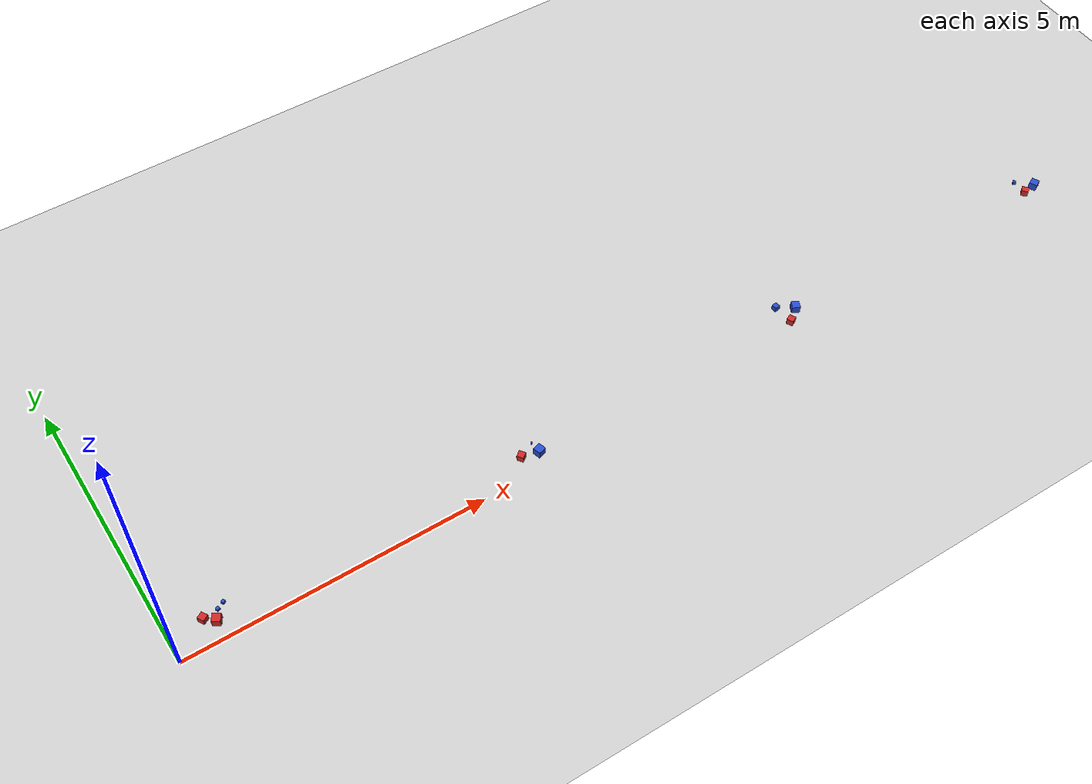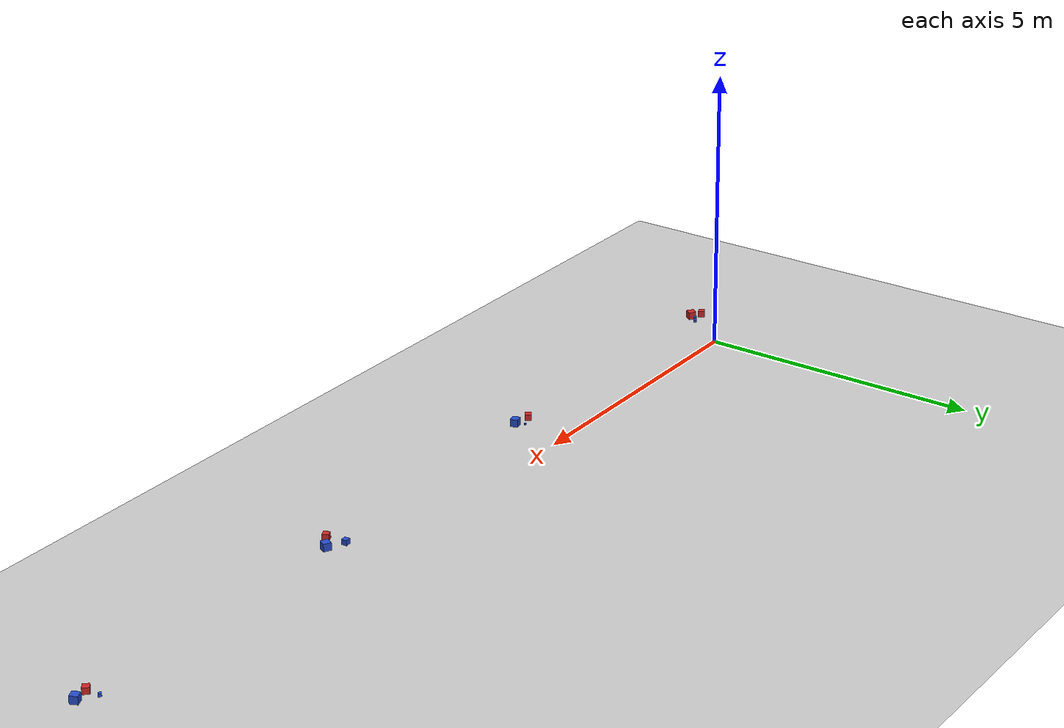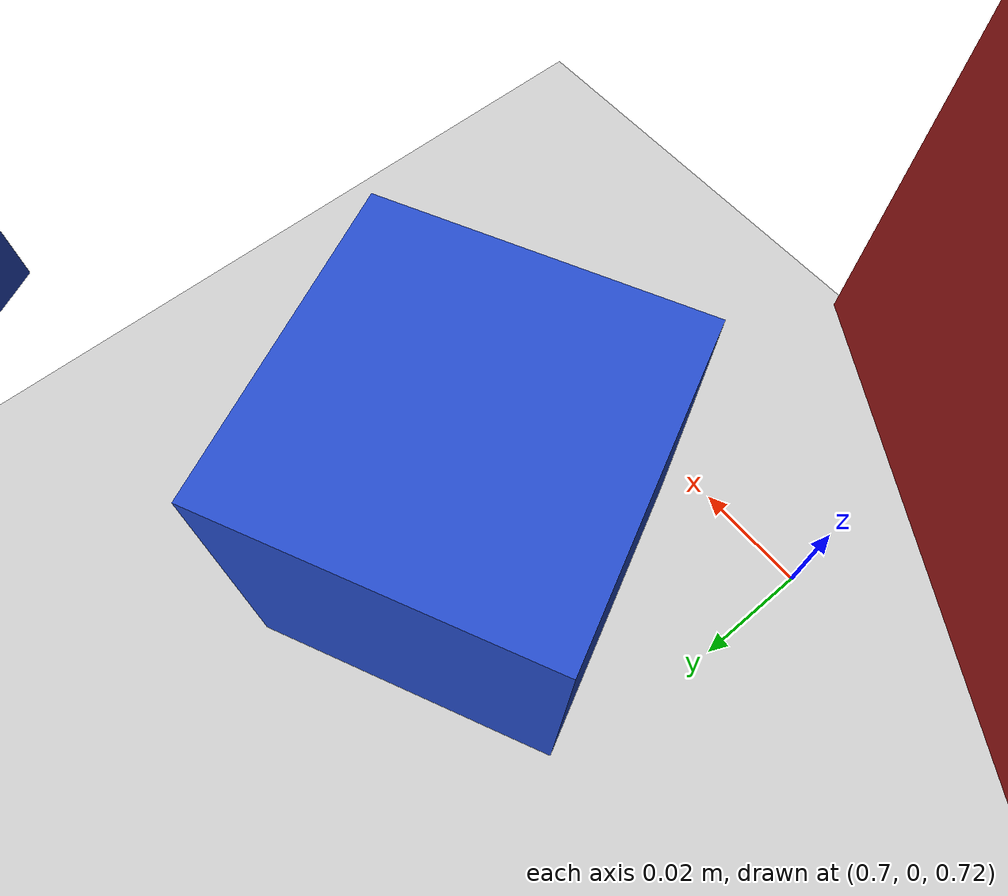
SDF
<sdf version="1.4">
 <world name="simple">
  <include><uri>model://ground_plane</uri></include>
  <include><uri>model://sun</uri></include>
  <include>
   <uri>model://red_cube13cm</uri>
   <name>block1</name>
   <pose>0.653947700902 -0.097402894128 0.75 0 0 -0.555202967788</pose>
  </include>
  <include>
   <uri>model://blue_cube5cm</uri>
   <name>block2</name>
   <pose>0.737253730557 0.0407451919931 0.75 0 0 -1.11572082559</pose>
  </include>
  <include>
   <uri>model://red_cube11cm</uri>
   <name>block3</name>
   <pose>0.50239629689 0.0207930853417 0.75 0 0 -1.02646132145</pose>
  </include>
  <include>
   <uri>model://blue_cube5cm</uri>
   <name>block4</name>
   <pose>0.847660319638 0.103398562641 0.75 0 0 -1.08449481668</pose>
  </include>
  <include>
   <uri>model://red_cube11cm</uri>
   <name>block11</name>
   <pose>5.602858722582 -0.0678591048643 0.75 0 0 -2.5063688768</pose>
  </include>
  <include>
   <uri>model://blue_cube13cm</uri>
   <name>block12</name>
   <pose>5.880983108751 -0.126020054957 0.75 0 0 1.85109343271</pose>
  </include>
  <include>
   <uri>model://blue_cube3cm</uri>
   <name>block14</name>
   <pose>5.856564673355 0.0539852008706 0.75 0 0 -0.510095647716</pose>
  </include>
  <include>
   <uri>model://blue_cube13cm</uri>
   <name>block22</name>
   <pose>10.775122606028 0.00917768376894 0.75 0 0 -0.462422397712</pose>
  </include>
  <include>
   <uri>model://red_cube11cm</uri>
   <name>block23</name>
   <pose>10.552118859762 -0.169786217913 0.75 0 0 -1.09881522158</pose>
  </include>
  <include>
   <uri>model://blue_cube9cm</uri>
   <name>block24</name>
   <pose>10.512461167611 0.171150570285 0.75 0 0 -1.51239862201</pose>
  </include>
  <include>
   <uri>model://blue_cube13cm</uri>
   <name>block32</name>
   <pose>15.82835834191 -0.0436869555082 0.75 0 0 2.00043534768</pose>
  </include>
  <include>
   <uri>model://red_cube11cm</uri>
   <name>block33</name>
   <pose>15.590232219462 -0.0823556166928 0.75 0 0 0.720586245288</pose>
  </include>
  <include>
   <uri>model://blue_cube5cm</uri>
   <name>block34</name>
   <pose>15.583656921256 0.166089543942 0.75 0 0 0.850874702647</pose>
  </include>
 </world>
</sdf>

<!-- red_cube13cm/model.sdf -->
<sdf version='1.4'>
  <model name="red_cube13cm">
      <static>0</static>
      <link name='link'>
        <inertial>
          <mass>0.3</mass>
          <inertia>
            <ixx>0.001</ixx>
            <ixy>0.000000</ixy>
            <ixz>0.000000</ixz>
            <iyy>0.001</iyy>
            <iyz>0.000000</iyz>
            <izz>0.001</izz>
          </inertia>
        </inertial>
        <collision name='collision'>
          <geometry>
            <box>
              <size>0.130 0.130 0.130</size>
            </box>
          </geometry>
          <surface>
            <friction>
              <ode>
                <mu>5.0</mu>
                <mu2>5.0</mu2>
              </ode>
            </friction>
            <contact>
              <ode>
                <kp>1000000.0</kp>
                <kd>100.0</kd>
                <max_vel>1.0</max_vel>
                <min_depth>0.002</min_depth>
              </ode>
            </contact>
          </surface>
        </collision>
        <visual name='visual'>
          <geometry>
            <box>
              <size>0.130 0.130 0.130</size>
            </box>
          </geometry>
          <material>
            <script>
              <uri>file://media/materials/scripts/gazebo.material</uri>
              <name>Gazebo/Red</name>
            </script>
          </material>
        </visual>
        <velocity_decay>
          <linear>0.000000</linear>
          <angular>0.000000</angular>
        </velocity_decay>
        <self_collide>0</self_collide>
        <kinematic>0</kinematic>
        <gravity>1</gravity>
      </link>
  </model>
</sdf>

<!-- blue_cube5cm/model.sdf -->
<sdf version='1.4'>
  <model name="blue_cube5cm">
      <static>0</static>
      <link name='link'>
        <inertial>
          <mass>0.1</mass>
          <inertia>
            <ixx>0.001</ixx>
            <ixy>0.000000</ixy>
            <ixz>0.000000</ixz>
            <iyy>0.001</iyy>
            <iyz>0.000000</iyz>
            <izz>0.001</izz>
          </inertia>
        </inertial>
        <collision name='collision'>
          <geometry>
            <box>
              <size>0.050 0.050 0.050</size>
            </box>
          </geometry>
          <surface>
            <friction>
              <ode>
                <mu>15.0</mu>
                <mu2>15.0</mu2>
              </ode>
            </friction>
            <contact>
              <ode>
                <kp>1000000.0</kp>
                <kd>100.0</kd>
                <max_vel>1.0</max_vel>
                <min_depth>0.002</min_depth>
              </ode>
            </contact>
          </surface>
        </collision>
        <visual name='visual'>
          <geometry>
            <box>
              <size>0.050 0.050 0.050</size>
            </box>
          </geometry>
          <material>
            <script>
              <uri>file://media/materials/scripts/gazebo.material</uri>
              <name>Gazebo/Blue</name>
            </script>
          </material>
        </visual>
        <velocity_decay>
          <linear>0.000000</linear>
          <angular>0.000000</angular>
        </velocity_decay>
        <self_collide>0</self_collide>
        <kinematic>0</kinematic>
        <gravity>1</gravity>
      </link>
  </model>
</sdf>

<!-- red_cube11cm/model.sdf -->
<sdf version='1.4'>
  <model name="red_cube11cm">
      <static>0</static>
      <link name='link'>
        <inertial>
          <mass>0.1</mass>
          <inertia>
            <ixx>0.001</ixx>
            <ixy>0.000000</ixy>
            <ixz>0.000000</ixz>
            <iyy>0.001</iyy>
            <iyz>0.000000</iyz>
            <izz>0.001</izz>
          </inertia>
        </inertial>
        <collision name='collision'>
          <geometry>
            <box>
              <size>0.110 0.110 0.110</size>
            </box>
          </geometry>
          <surface>
            <friction>
              <ode>
                <mu>15.0</mu>
                <mu2>15.0</mu2>
              </ode>
            </friction>
            <contact>
              <ode>
                <kp>1000000.0</kp>
                <kd>100.0</kd>
                <max_vel>1.0</max_vel>
                <min_depth>0.002</min_depth>
              </ode>
            </contact>
          </surface>
        </collision>
        <visual name='visual'>
          <geometry>
            <box>
              <size>0.110 0.110 0.110</size>
            </box>
          </geometry>
          <material>
            <script>
              <uri>file://media/materials/scripts/gazebo.material</uri>
              <name>Gazebo/Red</name>
            </script>
          </material>
        </visual>
        <velocity_decay>
          <linear>0.000000</linear>
          <angular>0.000000</angular>
        </velocity_decay>
        <self_collide>0</self_collide>
        <kinematic>0</kinematic>
        <gravity>1</gravity>
      </link>
  </model>
</sdf>

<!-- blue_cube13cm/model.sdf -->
<sdf version='1.4'>
  <model name="blue_cube13cm">
      <static>0</static>
      <link name='link'>
        <inertial>
          <mass>0.1</mass>
          <inertia>
            <ixx>0.001</ixx>
            <ixy>0.000000</ixy>
            <ixz>0.000000</ixz>
            <iyy>0.001</iyy>
            <iyz>0.000000</iyz>
            <izz>0.001</izz>
          </inertia>
        </inertial>
        <collision name='collision'>
          <geometry>
            <box>
              <size>0.130 0.130 0.130</size>
            </box>
          </geometry>
          <surface>
            <friction>
              <ode>
                <mu>15.0</mu>
                <mu2>15.0</mu2>
              </ode>
            </friction>
            <contact>
              <ode>
                <kp>1000000.0</kp>
                <kd>100.0</kd>
                <max_vel>1.0</max_vel>
                <min_depth>0.002</min_depth>
              </ode>
            </contact>
          </surface>
        </collision>
        <visual name='visual'>
          <geometry>
            <box>
              <size>0.130 0.130 0.130</size>
            </box>
          </geometry>
          <material>
            <script>
              <uri>file://media/materials/scripts/gazebo.material</uri>
              <name>Gazebo/Blue</name>
            </script>
          </material>
        </visual>
        <velocity_decay>
          <linear>0.000000</linear>
          <angular>0.000000</angular>
        </velocity_decay>
        <self_collide>0</self_collide>
        <kinematic>0</kinematic>
        <gravity>1</gravity>
      </link>
  </model>
</sdf>

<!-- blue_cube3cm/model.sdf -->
<sdf version='1.4'>
  <model name="blue_cube3cm">
      <static>0</static>
      <link name='link'>
        <inertial>
          <mass>0.1</mass>
          <inertia>
            <ixx>0.001</ixx>
            <ixy>0.000000</ixy>
            <ixz>0.000000</ixz>
            <iyy>0.001</iyy>
            <iyz>0.000000</iyz>
            <izz>0.001</izz>
          </inertia>
        </inertial>
        <collision name='collision'>
          <geometry>
            <box>
              <size>0.030 0.030 0.030</size>
            </box>
          </geometry>
          <surface>
            <friction>
              <ode>
                <mu>15.0</mu>
                <mu2>15.0</mu2>
              </ode>
            </friction>
            <contact>
              <ode>
                <kp>1000000.0</kp>
                <kd>100.0</kd>
                <max_vel>1.0</max_vel>
                <min_depth>0.002</min_depth>
              </ode>
            </contact>
          </surface>
        </collision>
        <visual name='visual'>
          <geometry>
            <box>
              <size>0.030 0.030 0.030</size>
            </box>
          </geometry>
          <material>
            <script>
              <uri>file://media/materials/scripts/gazebo.material</uri>
              <name>Gazebo/Blue</name>
            </script>
          </material>
        </visual>
        <velocity_decay>
          <linear>0.000000</linear>
          <angular>0.000000</angular>
        </velocity_decay>
        <self_collide>0</self_collide>
        <kinematic>0</kinematic>
        <gravity>1</gravity>
      </link>
  </model>
</sdf>

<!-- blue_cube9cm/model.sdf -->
<sdf version='1.4'>
  <model name="blue_cube9cm">
      <static>0</static>
      <link name='link'>
        <inertial>
          <mass>0.1</mass>
          <inertia>
            <ixx>0.001</ixx>
            <ixy>0.000000</ixy>
            <ixz>0.000000</ixz>
            <iyy>0.001</iyy>
            <iyz>0.000000</iyz>
            <izz>0.001</izz>
          </inertia>
        </inertial>
        <collision name='collision'>
          <geometry>
            <box>
              <size>0.090 0.090 0.090</size>
            </box>
          </geometry>
          <surface>
            <friction>
              <ode>
                <mu>15.0</mu>
                <mu2>15.0</mu2>
              </ode>
            </friction>
            <contact>
              <ode>
                <kp>1000000.0</kp>
                <kd>100.0</kd>
                <max_vel>1.0</max_vel>
                <min_depth>0.002</min_depth>
              </ode>
            </contact>
          </surface>
        </collision>
        <visual name='visual'>
          <geometry>
            <box>
              <size>0.090 0.090 0.090</size>
            </box>
          </geometry>
          <material>
            <script>
              <uri>file://media/materials/scripts/gazebo.material</uri>
              <name>Gazebo/Blue</name>
            </script>
          </material>
        </visual>
        <velocity_decay>
          <linear>0.000000</linear>
          <angular>0.000000</angular>
        </velocity_decay>
        <self_collide>0</self_collide>
        <kinematic>0</kinematic>
        <gravity>1</gravity>
      </link>
  </model>
</sdf>
